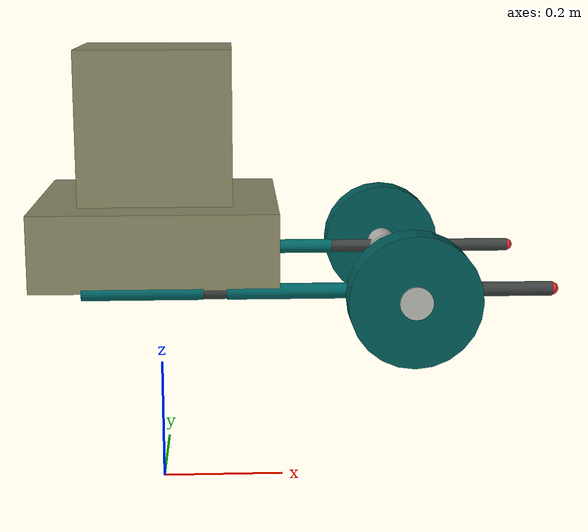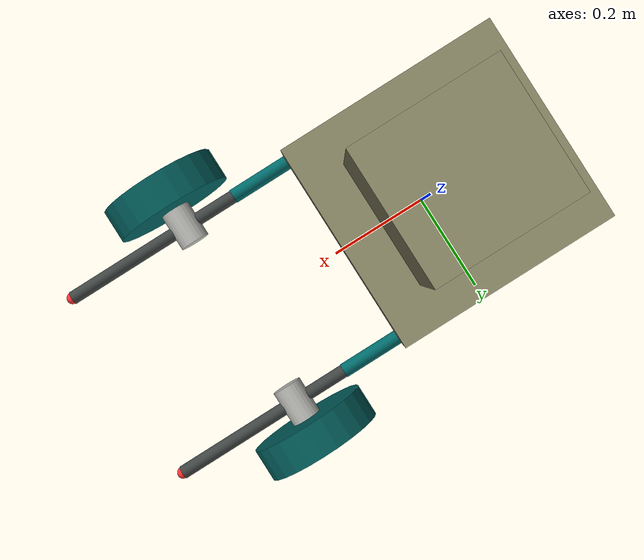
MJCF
<mujoco model="five_bar_wheel_leg_balance_car">
  <compiler angle="radian"/>
  <option timestep="0.001" integrator="RK4"/>

  <worldbody>
    <body name="base_link" pos="0 0 0.36">
      <inertial pos="0 0 0.1265" quat="0.707107 0 0 0.707107" mass="2.3" diaginertia="0.0447 0.0423 0.0406"/>
      <joint name="floating_base" type="free"/>
      <geom size="0.19 0.18 0.06" pos="0 0 0.06" type="box" rgba="0.56 0.55 0.41 1"/>
      <geom size="0.12 0.11 0.12" pos="0 0 0.24" type="box" rgba="0.56 0.55 0.41 1"/>
      <site name="imu" pos="0 0 0.14" size="0.012" rgba="0.1 0.2 0.9 1"/>
      <body name="left_front_upper_link" pos="0.11 0.17 0">
        <inertial pos="0.0922 0 0" quat="0.5 0.5 0.5 0.5" mass="0.09" diaginertia="0.00029 0.00022 0.00012"/>
        <joint name="left_front_hip_joint" pos="0 0 0" axis="0 1 0" range="0.1 1.8" actuatorfrcrange="-18 18" damping="0.04" frictionloss="0.01"/>
        <geom size="0.012 0.0922" pos="0.0922 0 0" quat="0.707247 0 0.706967 0" type="cylinder" rgba="0 0.42 0.42 1"/>
        <body name="left_front_lower_link" pos="0.1844 0 0">
          <inertial pos="0.1565 0 0" quat="0.5 0.5 0.5 0.5" mass="0.12" diaginertia="0.00108 0.00094 0.00018"/>
          <joint name="left_front_knee_joint" pos="0 0 0" axis="0 1 0" range="0 3.14159" actuatorfrcrange="-3 3" damping="0.02" frictionloss="0.004"/>
          <geom size="0.011 0.1565" pos="0.1565 0 0" quat="0.707388 0 -0.706825 0" type="cylinder" rgba="0.25 0.27 0.26 1"/>
          <site name="left_front_closure_site" pos="0.313 0 0" size="0.01" rgba="1 0.2 0.2 1"/>
        </body>
      </body>
      <body name="left_rear_upper_link" pos="-0.11 0.17 0">
        <inertial pos="0.0922 0 0" quat="0.5 0.5 0.5 0.5" mass="0.09" diaginertia="0.00029 0.00022 0.00012"/>
        <joint name="left_rear_hip_joint" pos="0 0 0" axis="0 1 0" range="1.34159 3.04159" actuatorfrcrange="-18 18" damping="0.04" frictionloss="0.01"/>
        <geom size="0.012 0.0922" pos="0.0922 0 0" quat="0.707247 0 0.706967 0" type="cylinder" rgba="0 0.42 0.42 1"/>
        <body name="left_rear_lower_link" pos="0.1844 0 0">
          <inertial pos="0.1565 0 0" quat="0.5 0.5 0.5 0.5" mass="0.12" diaginertia="0.00108 0.00094 0.00018"/>
          <joint name="left_rear_knee_joint" pos="0 0 0" axis="0 1 0" range="-3.14159 0" actuatorfrcrange="-3 3" damping="0.02" frictionloss="0.004"/>
          <geom size="0.011 0.1565" pos="0.1565 0 0" quat="0.707388 0 -0.706825 0" type="cylinder" rgba="0.25 0.27 0.26 1"/>
          <body name="left_wheel_carrier" pos="0.313 0 0">
            <inertial pos="0 0.03 0" quat="0.707107 0.707107 0 0" mass="0.09" diaginertia="8e-05 8e-05 4e-05"/>
            <joint name="left_rear_ankle_joint" pos="0 0 0" axis="0 1 0" range="-2.8 2.8" actuatorfrcrange="-3 3" damping="0.02" frictionloss="0.004"/>
            <site name="left_wheel_carrier_closure_site" pos="0 0 0" size="0.01" rgba="1 0.2 0.2 1"/>
            <geom size="0.025 0.06" pos="0 0.03 0" quat="0.707105 0.707108 0 0" type="cylinder" rgba="0.72 0.72 0.7 1"/>
            <body name="left_wheel" pos="0 0.06 0">
              <inertial pos="0 0 0" quat="0.5 0.5 -0.5 0.5" mass="0.32" diaginertia="0.0016 0.00102 0.00102"/>
              <joint name="left_wheel_joint" pos="0 0 0" axis="0 1 0" actuatorfrcrange="-16 16" damping="0.01" frictionloss="0.004"/>
              <geom name="left_wheel_tire" size="0.1 0.0275" quat="0.707105 0.707108 0 0" type="cylinder" rgba="0 0.36 0.35 1" friction="1.4 0.04 0.002"/>
            </body>
          </body>
        </body>
      </body>
      <body name="right_front_upper_link" pos="0.11 -0.17 0">
        <inertial pos="0.0922 0 0" quat="0.5 0.5 0.5 0.5" mass="0.09" diaginertia="0.00029 0.00022 0.00012"/>
        <joint name="right_front_hip_joint" pos="0 0 0" axis="0 1 0" range="0.1 1.8" actuatorfrcrange="-18 18" damping="0.04" frictionloss="0.01"/>
        <geom size="0.012 0.0922" pos="0.0922 0 0" quat="0.707247 0 0.706967 0" type="cylinder" rgba="0 0.42 0.42 1"/>
        <body name="right_front_lower_link" pos="0.1844 0 0">
          <inertial pos="0.1565 0 0" quat="0.5 0.5 0.5 0.5" mass="0.12" diaginertia="0.00108 0.00094 0.00018"/>
          <joint name="right_front_knee_joint" pos="0 0 0" axis="0 1 0" range="0 3.14159" actuatorfrcrange="-3 3" damping="0.02" frictionloss="0.004"/>
          <geom size="0.011 0.1565" pos="0.1565 0 0" quat="0.707388 0 -0.706825 0" type="cylinder" rgba="0.25 0.27 0.26 1"/>
          <site name="right_front_closure_site" pos="0.313 0 0" size="0.01" rgba="1 0.2 0.2 1"/>
        </body>
      </body>
      <body name="right_rear_upper_link" pos="-0.11 -0.17 0">
        <inertial pos="0.0922 0 0" quat="0.5 0.5 0.5 0.5" mass="0.09" diaginertia="0.00029 0.00022 0.00012"/>
        <joint name="right_rear_hip_joint" pos="0 0 0" axis="0 1 0" range="1.34159 3.04159" actuatorfrcrange="-18 18" damping="0.04" frictionloss="0.01"/>
        <geom size="0.012 0.0922" pos="0.0922 0 0" quat="0.707247 0 0.706967 0" type="cylinder" rgba="0 0.42 0.42 1"/>
        <body name="right_rear_lower_link" pos="0.1844 0 0">
          <inertial pos="0.1565 0 0" quat="0.5 0.5 0.5 0.5" mass="0.12" diaginertia="0.00108 0.00094 0.00018"/>
          <joint name="right_rear_knee_joint" pos="0 0 0" axis="0 1 0" range="-3.14159 0" actuatorfrcrange="-3 3" damping="0.02" frictionloss="0.004"/>
          <geom size="0.011 0.1565" pos="0.1565 0 0" quat="0.707388 0 -0.706825 0" type="cylinder" rgba="0.25 0.27 0.26 1"/>
          <body name="right_wheel_carrier" pos="0.313 0 0">
            <inertial pos="0 -0.03 0" quat="0.707107 0.707107 0 0" mass="0.09" diaginertia="8e-05 8e-05 4e-05"/>
            <joint name="right_rear_ankle_joint" pos="0 0 0" axis="0 1 0" range="-2.8 2.8" actuatorfrcrange="-3 3" damping="0.02" frictionloss="0.004"/>
            <site name="right_wheel_carrier_closure_site" pos="0 0 0" size="0.01" rgba="1 0.2 0.2 1"/>
            <geom size="0.025 0.06" pos="0 -0.03 0" quat="0.707105 0.707108 0 0" type="cylinder" rgba="0.72 0.72 0.7 1"/>
            <body name="right_wheel" pos="0 -0.06 0">
              <inertial pos="0 0 0" quat="0.5 0.5 -0.5 0.5" mass="0.32" diaginertia="0.0016 0.00102 0.00102"/>
              <joint name="right_wheel_joint" pos="0 0 0" axis="0 1 0" actuatorfrcrange="-16 16" damping="0.01" frictionloss="0.004"/>
              <geom name="right_wheel_tire" size="0.1 0.0275" quat="0.707105 0.707108 0 0" type="cylinder" rgba="0 0.36 0.35 1" friction="1.4 0.04 0.002"/>
            </body>
          </body>
        </body>
      </body>
    </body>
  </worldbody>

  <equality>
    <connect name="left_front_fivebar_closure" site1="left_front_closure_site" site2="left_wheel_carrier_closure_site" solref="0.006 1" solimp="0.95 0.99 0.001"/>
    <connect name="right_front_fivebar_closure" site1="right_front_closure_site" site2="right_wheel_carrier_closure_site" solref="0.006 1" solimp="0.95 0.99 0.001"/>
  </equality>

  <contact>
    <exclude body1="left_front_lower_link" body2="left_wheel_carrier"/>
    <exclude body1="left_front_lower_link" body2="left_rear_lower_link"/>
    <exclude body1="right_front_lower_link" body2="right_wheel_carrier"/>
    <exclude body1="right_front_lower_link" body2="right_rear_lower_link"/>
  </contact>

  <actuator>
    <!-- Left side -->
    <motor name="l1_motor" joint="left_front_hip_joint" gear="1" ctrllimited="true" ctrlrange="-20 20"/>
    <motor name="l2_motor" joint="left_rear_hip_joint" gear="1" ctrllimited="true" ctrlrange="-20 20"/>
    <motor name="lw_motor" joint="left_wheel_joint" gear="1" ctrllimited="true" ctrlrange="-20 20"/>

    <!-- Right side -->
    <motor name="r1_motor" joint="right_front_hip_joint" gear="1" ctrllimited="true" ctrlrange="-20 20"/>
    <motor name="r2_motor" joint="right_rear_hip_joint" gear="1" ctrllimited="true" ctrlrange="-20 20"/>
    <motor name="rw_motor" joint="right_wheel_joint" gear="1" ctrllimited="true" ctrlrange="-20 20"/>
  </actuator>

  <sensor>
    <!-- actuator position -->
    <actuatorpos name="l1_motor_p" actuator="l1_motor"/>
    <actuatorpos name="l2_motor_p" actuator="l2_motor"/>
    <actuatorpos name="lw_motor_p" actuator="lw_motor"/>
    <actuatorpos name="r1_motor_p" actuator="r1_motor"/>
    <actuatorpos name="r2_motor_p" actuator="r2_motor"/>
    <actuatorpos name="rw_motor_p" actuator="rw_motor"/>

    <!-- actuator velocity -->
    <actuatorvel name="l1_motor_v" actuator="l1_motor"/>
    <actuatorvel name="l2_motor_v" actuator="l2_motor"/>
    <actuatorvel name="lw_motor_v" actuator="lw_motor"/>
    <actuatorvel name="r1_motor_v" actuator="r1_motor"/>
    <actuatorvel name="r2_motor_v" actuator="r2_motor"/>
    <actuatorvel name="rw_motor_v" actuator="rw_motor"/>

    <!-- actuator force -->
    <actuatorfrc name="l1_motor_f" actuator="l1_motor" noise="1e-3"/>
    <actuatorfrc name="l2_motor_f" actuator="l2_motor" noise="1e-3"/>
    <actuatorfrc name="lw_motor_f" actuator="lw_motor" noise="1e-3"/>
    <actuatorfrc name="r1_motor_f" actuator="r1_motor" noise="1e-3"/>
    <actuatorfrc name="r2_motor_f" actuator="r2_motor" noise="1e-3"/>
    <actuatorfrc name="rw_motor_f" actuator="rw_motor" noise="1e-3"/>

    <!-- IMU (imu_main): pose/orientation + acceleration + angular velocity -->
    <accelerometer name="imu_main_acc" site="imu" cutoff="157"/>
    <gyro name="imu_main_gyro" site="imu" cutoff="34.9"/>
    <framequat name="imu_main_quat" objtype="site" objname="imu"/>
  </sensor>
    <!-- qpos order: free joint (pos x y z + quat w x y z) followed by joint qpos in appearance order -->
</mujoco>
